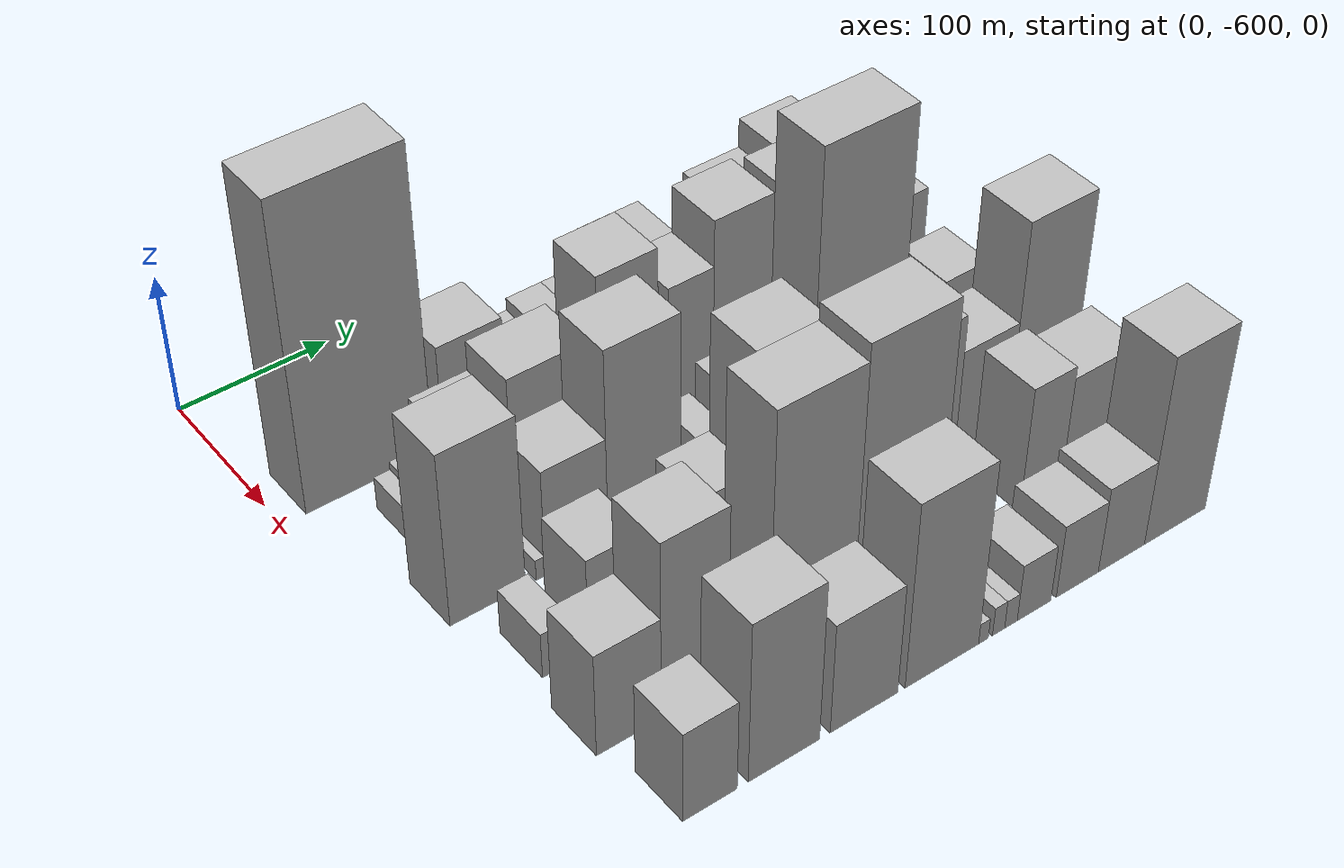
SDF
<sdf version="1.6">
 <world name="default">
  <model name="building_10">
   <static>1</static>
   <pose>100.0000 -542.4456 0 0.000000 0.000000 0.000000</pose>
   <link name="link">
    <pose>0 0 111.00 0 0 0</pose>
    <collision name="collision"><geometry><box><size>40.0000 84.9326 222.0000</size></box></geometry></collision>
    <visual name="visual">
     <cast_shadows>0</cast_shadows>
     <geometry><box><size>40.0000 84.9326 222.0000</size></box></geometry>
     <material>
      <script>
       <uri>model://HANNAS_wall/materials/scripts</uri>
       <uri>model://HANNAS_wall/materials/textures</uri>
       <name>vrc/HANNAS_wall</name>
      </script>
     </material>
    </visual>
   </link>
  </model>
  <model name="building_11">
   <static>1</static>
   <pose>100.0000 -470.8424 0 0.000000 0.000000 0.000000</pose>
   <link name="link">
    <pose>0 0 37.50 0 0 0</pose>
    <collision name="collision"><geometry><box><size>40.0000 44.2738 75.0000</size></box></geometry></collision>
    <visual name="visual">
     <cast_shadows>0</cast_shadows>
     <geometry><box><size>40.0000 44.2738 75.0000</size></box></geometry>
     <material>
      <script>
       <uri>model://HANNAS_wall/materials/scripts</uri>
       <uri>model://HANNAS_wall/materials/textures</uri>
       <name>vrc/HANNAS_wall</name>
      </script>
     </material>
    </visual>
   </link>
  </model>
  <model name="building_12">
   <static>1</static>
   <pose>100.0000 -430.4448 0 0.000000 0.000000 0.000000</pose>
   <link name="link">
    <pose>0 0 19.50 0 0 0</pose>
    <collision name="collision"><geometry><box><size>40.0000 20.5215 39.0000</size></box></geometry></collision>
    <visual name="visual">
     <cast_shadows>0</cast_shadows>
     <geometry><box><size>40.0000 20.5215 39.0000</size></box></geometry>
     <material>
      <script>
       <uri>model://HANNAS_wall/materials/scripts</uri>
       <uri>model://HANNAS_wall/materials/textures</uri>
       <name>vrc/HANNAS_wall</name>
      </script>
     </material>
    </visual>
   </link>
  </model>
  <model name="building_13">
   <static>1</static>
   <pose>100.0000 -407.6726 0 0.000000 0.000000 0.000000</pose>
   <link name="link">
    <pose>0 0 24.00 0 0 0</pose>
    <collision name="collision"><geometry><box><size>40.0000 25.0229 48.0000</size></box></geometry></collision>
    <visual name="visual">
     <cast_shadows>0</cast_shadows>
     <geometry><box><size>40.0000 25.0229 48.0000</size></box></geometry>
     <material>
      <script>
       <uri>model://HANNAS_wall/materials/scripts</uri>
       <uri>model://HANNAS_wall/materials/textures</uri>
       <name>vrc/HANNAS_wall</name>
      </script>
     </material>
    </visual>
   </link>
  </model>
  <model name="building_14">
   <static>1</static>
   <pose>100.0000 -381.9116 0 0.000000 0.000000 0.000000</pose>
   <link name="link">
    <pose>0 0 24.00 0 0 0</pose>
    <collision name="collision"><geometry><box><size>40.0000 26.4992 48.0000</size></box></geometry></collision>
    <visual name="visual">
     <cast_shadows>0</cast_shadows>
     <geometry><box><size>40.0000 26.4992 48.0000</size></box></geometry>
     <material>
      <script>
       <uri>model://HANNAS_wall/materials/scripts</uri>
       <uri>model://HANNAS_wall/materials/textures</uri>
       <name>vrc/HANNAS_wall</name>
      </script>
     </material>
    </visual>
   </link>
  </model>
  <model name="building_15">
   <static>1</static>
   <pose>100.0000 -346.2069 0 0.000000 0.000000 0.000000</pose>
   <link name="link">
    <pose>0 0 37.50 0 0 0</pose>
    <collision name="collision"><geometry><box><size>40.0000 44.9101 75.0000</size></box></geometry></collision>
    <visual name="visual">
     <cast_shadows>0</cast_shadows>
     <geometry><box><size>40.0000 44.9101 75.0000</size></box></geometry>
     <material>
      <script>
       <uri>model://HANNAS_wall/materials/scripts</uri>
       <uri>model://HANNAS_wall/materials/textures</uri>
       <name>vrc/HANNAS_wall</name>
      </script>
     </material>
    </visual>
   </link>
  </model>
  <model name="building_16">
   <static>1</static>
   <pose>100.0000 -314.9539 0 0.000000 0.000000 0.000000</pose>
   <link name="link">
    <pose>0 0 10.50 0 0 0</pose>
    <collision name="collision"><geometry><box><size>40.0000 9.5960 21.0000</size></box></geometry></collision>
    <visual name="visual">
     <cast_shadows>0</cast_shadows>
     <geometry><box><size>40.0000 9.5960 21.0000</size></box></geometry>
     <material>
      <script>
       <uri>model://HANNAS_wall/materials/scripts</uri>
       <uri>model://HANNAS_wall/materials/textures</uri>
       <name>vrc/HANNAS_wall</name>
      </script>
     </material>
    </visual>
   </link>
  </model>
  <model name="building_17">
   <static>1</static>
   <pose>100.0000 -303.6163 0 0.000000 0.000000 0.000000</pose>
   <link name="link">
    <pose>0 0 13.50 0 0 0</pose>
    <collision name="collision"><geometry><box><size>40.0000 13.0792 27.0000</size></box></geometry></collision>
    <visual name="visual">
     <cast_shadows>0</cast_shadows>
     <geometry><box><size>40.0000 13.0792 27.0000</size></box></geometry>
     <material>
      <script>
       <uri>model://HANNAS_wall/materials/scripts</uri>
       <uri>model://HANNAS_wall/materials/textures</uri>
       <name>vrc/HANNAS_wall</name>
      </script>
     </material>
    </visual>
   </link>
  </model>
  <model name="building_18">
   <static>1</static>
   <pose>100.0000 -293.6193 0 0.000000 0.000000 0.000000</pose>
   <link name="link">
    <pose>0 0 7.50 0 0 0</pose>
    <collision name="collision"><geometry><box><size>40.0000 6.9149 15.0000</size></box></geometry></collision>
    <visual name="visual">
     <cast_shadows>0</cast_shadows>
     <geometry><box><size>40.0000 6.9149 15.0000</size></box></geometry>
     <material>
      <script>
       <uri>model://HANNAS_wall/materials/scripts</uri>
       <uri>model://HANNAS_wall/materials/textures</uri>
       <name>vrc/HANNAS_wall</name>
      </script>
     </material>
    </visual>
   </link>
  </model>
  <model name="building_19">
   <static>1</static>
   <pose>100.0000 -268.9465 0 0.000000 0.000000 0.000000</pose>
   <link name="link">
    <pose>0 0 40.50 0 0 0</pose>
    <collision name="collision"><geometry><box><size>40.0000 42.4308 81.0000</size></box></geometry></collision>
    <visual name="visual">
     <cast_shadows>0</cast_shadows>
     <geometry><box><size>40.0000 42.4308 81.0000</size></box></geometry>
     <material>
      <script>
       <uri>model://HANNAS_wall/materials/scripts</uri>
       <uri>model://HANNAS_wall/materials/textures</uri>
       <name>vrc/HANNAS_wall</name>
      </script>
     </material>
    </visual>
   </link>
  </model>
  <model name="building_20">
   <static>1</static>
   <pose>100.0000 -227.5812 0 0.000000 0.000000 0.000000</pose>
   <link name="link">
    <pose>0 0 51.00 0 0 0</pose>
    <collision name="collision"><geometry><box><size>40.0000 40.2998 102.0000</size></box></geometry></collision>
    <visual name="visual">
     <cast_shadows>0</cast_shadows>
     <geometry><box><size>40.0000 40.2998 102.0000</size></box></geometry>
     <material>
      <script>
       <uri>model://HANNAS_wall/materials/scripts</uri>
       <uri>model://HANNAS_wall/materials/textures</uri>
       <name>vrc/HANNAS_wall</name>
      </script>
     </material>
    </visual>
   </link>
  </model>
  <model name="building_21">
   <static>1</static>
   <pose>100.0000 -189.7104 0 0.000000 0.000000 0.000000</pose>
   <link name="link">
    <pose>0 0 34.50 0 0 0</pose>
    <collision name="collision"><geometry><box><size>40.0000 35.4419 69.0000</size></box></geometry></collision>
    <visual name="visual">
     <cast_shadows>0</cast_shadows>
     <geometry><box><size>40.0000 35.4419 69.0000</size></box></geometry>
     <material>
      <script>
       <uri>model://HANNAS_wall/materials/scripts</uri>
       <uri>model://HANNAS_wall/materials/textures</uri>
       <name>vrc/HANNAS_wall</name>
      </script>
     </material>
    </visual>
   </link>
  </model>
  <model name="building_67">
   <static>1</static>
   <pose>160.0000 -545.2296 0 0.000000 0.000000 0.000000</pose>
   <link name="link">
    <pose>0 0 12.00 0 0 0</pose>
    <collision name="collision"><geometry><box><size>40.0000 10.5852 24.0000</size></box></geometry></collision>
    <visual name="visual">
     <cast_shadows>0</cast_shadows>
     <geometry><box><size>40.0000 10.5852 24.0000</size></box></geometry>
     <material>
      <script>
       <uri>model://HANNAS_wall/materials/scripts</uri>
       <uri>model://HANNAS_wall/materials/textures</uri>
       <name>vrc/HANNAS_wall</name>
      </script>
     </material>
    </visual>
   </link>
  </model>
  <model name="building_68">
   <static>1</static>
   <pose>160.0000 -531.9764 0 0.000000 0.000000 0.000000</pose>
   <link name="link">
    <pose>0 0 15.00 0 0 0</pose>
    <collision name="collision"><geometry><box><size>40.0000 15.9211 30.0000</size></box></geometry></collision>
    <visual name="visual">
     <cast_shadows>0</cast_shadows>
     <geometry><box><size>40.0000 15.9211 30.0000</size></box></geometry>
     <material>
      <script>
       <uri>model://HANNAS_wall/materials/scripts</uri>
       <uri>model://HANNAS_wall/materials/textures</uri>
       <name>vrc/HANNAS_wall</name>
      </script>
     </material>
    </visual>
   </link>
  </model>
  <model name="building_69">
   <static>1</static>
   <pose>160.0000 -504.6175 0 0.000000 0.000000 0.000000</pose>
   <link name="link">
    <pose>0 0 34.50 0 0 0</pose>
    <collision name="collision"><geometry><box><size>40.0000 38.7967 69.0000</size></box></geometry></collision>
    <visual name="visual">
     <cast_shadows>0</cast_shadows>
     <geometry><box><size>40.0000 38.7967 69.0000</size></box></geometry>
     <material>
      <script>
       <uri>model://HANNAS_wall/materials/scripts</uri>
       <uri>model://HANNAS_wall/materials/textures</uri>
       <name>vrc/HANNAS_wall</name>
      </script>
     </material>
    </visual>
   </link>
  </model>
  <model name="building_70">
   <static>1</static>
   <pose>160.0000 -458.4277 0 0.000000 0.000000 0.000000</pose>
   <link name="link">
    <pose>0 0 45.00 0 0 0</pose>
    <collision name="collision"><geometry><box><size>40.0000 53.5829 90.0000</size></box></geometry></collision>
    <visual name="visual">
     <cast_shadows>0</cast_shadows>
     <geometry><box><size>40.0000 53.5829 90.0000</size></box></geometry>
     <material>
      <script>
       <uri>model://HANNAS_wall/materials/scripts</uri>
       <uri>model://HANNAS_wall/materials/textures</uri>
       <name>vrc/HANNAS_wall</name>
      </script>
     </material>
    </visual>
   </link>
  </model>
  <model name="building_71">
   <static>1</static>
   <pose>160.0000 -428.1743 0 0.000000 0.000000 0.000000</pose>
   <link name="link">
    <pose>0 0 7.50 0 0 0</pose>
    <collision name="collision"><geometry><box><size>40.0000 6.9239 15.0000</size></box></geometry></collision>
    <visual name="visual">
     <cast_shadows>0</cast_shadows>
     <geometry><box><size>40.0000 6.9239 15.0000</size></box></geometry>
     <material>
      <script>
       <uri>model://HANNAS_wall/materials/scripts</uri>
       <uri>model://HANNAS_wall/materials/textures</uri>
       <name>vrc/HANNAS_wall</name>
      </script>
     </material>
    </visual>
   </link>
  </model>
  <model name="building_72">
   <static>1</static>
   <pose>160.0000 -403.7115 0 0.000000 0.000000 0.000000</pose>
   <link name="link">
    <pose>0 0 66.00 0 0 0</pose>
    <collision name="collision"><geometry><box><size>40.0000 42.0019 132.0000</size></box></geometry></collision>
    <visual name="visual">
     <cast_shadows>0</cast_shadows>
     <geometry><box><size>40.0000 42.0019 132.0000</size></box></geometry>
     <material>
      <script>
       <uri>model://HANNAS_wall/materials/scripts</uri>
       <uri>model://HANNAS_wall/materials/textures</uri>
       <name>vrc/HANNAS_wall</name>
      </script>
     </material>
    </visual>
   </link>
  </model>
  <model name="building_73">
   <static>1</static>
   <pose>160.0000 -359.5180 0 0.000000 0.000000 0.000000</pose>
   <link name="link">
    <pose>0 0 49.50 0 0 0</pose>
    <collision name="collision"><geometry><box><size>40.0000 32.3851 99.0000</size></box></geometry></collision>
    <visual name="visual">
     <cast_shadows>0</cast_shadows>
     <geometry><box><size>40.0000 32.3851 99.0000</size></box></geometry>
     <material>
      <script>
       <uri>model://HANNAS_wall/materials/scripts</uri>
       <uri>model://HANNAS_wall/materials/textures</uri>
       <name>vrc/HANNAS_wall</name>
      </script>
     </material>
    </visual>
   </link>
  </model>
  <model name="building_74">
   <static>1</static>
   <pose>160.0000 -322.0054 0 0.000000 0.000000 0.000000</pose>
   <link name="link">
    <pose>0 0 66.00 0 0 0</pose>
    <collision name="collision"><geometry><box><size>40.0000 42.6402 132.0000</size></box></geometry></collision>
    <visual name="visual">
     <cast_shadows>0</cast_shadows>
     <geometry><box><size>40.0000 42.6402 132.0000</size></box></geometry>
     <material>
      <script>
       <uri>model://HANNAS_wall/materials/scripts</uri>
       <uri>model://HANNAS_wall/materials/textures</uri>
       <name>vrc/HANNAS_wall</name>
      </script>
     </material>
    </visual>
   </link>
  </model>
  <model name="building_75">
   <static>1</static>
   <pose>160.0000 -296.1301 0 0.000000 0.000000 0.000000</pose>
   <link name="link">
    <pose>0 0 10.50 0 0 0</pose>
    <collision name="collision"><geometry><box><size>40.0000 9.1105 21.0000</size></box></geometry></collision>
    <visual name="visual">
     <cast_shadows>0</cast_shadows>
     <geometry><box><size>40.0000 9.1105 21.0000</size></box></geometry>
     <material>
      <script>
       <uri>model://HANNAS_wall/materials/scripts</uri>
       <uri>model://HANNAS_wall/materials/textures</uri>
       <name>vrc/HANNAS_wall</name>
      </script>
     </material>
    </visual>
   </link>
  </model>
  <model name="building_76">
   <static>1</static>
   <pose>160.0000 -271.3415 0 0.000000 0.000000 0.000000</pose>
   <link name="link">
    <pose>0 0 64.50 0 0 0</pose>
    <collision name="collision"><geometry><box><size>40.0000 40.4667 129.0000</size></box></geometry></collision>
    <visual name="visual">
     <cast_shadows>0</cast_shadows>
     <geometry><box><size>40.0000 40.4667 129.0000</size></box></geometry>
     <material>
      <script>
       <uri>model://HANNAS_wall/materials/scripts</uri>
       <uri>model://HANNAS_wall/materials/textures</uri>
       <name>vrc/HANNAS_wall</name>
      </script>
     </material>
    </visual>
   </link>
  </model>
  <model name="building_77">
   <static>1</static>
   <pose>160.0000 -239.2705 0 0.000000 0.000000 0.000000</pose>
   <link name="link">
    <pose>0 0 16.50 0 0 0</pose>
    <collision name="collision"><geometry><box><size>40.0000 17.6752 33.0000</size></box></geometry></collision>
    <visual name="visual">
     <cast_shadows>0</cast_shadows>
     <geometry><box><size>40.0000 17.6752 33.0000</size></box></geometry>
     <material>
      <script>
       <uri>model://HANNAS_wall/materials/scripts</uri>
       <uri>model://HANNAS_wall/materials/textures</uri>
       <name>vrc/HANNAS_wall</name>
      </script>
     </material>
    </visual>
   </link>
  </model>
  <model name="building_78">
   <static>1</static>
   <pose>160.0000 -206.2188 0 0.000000 0.000000 0.000000</pose>
   <link name="link">
    <pose>0 0 40.50 0 0 0</pose>
    <collision name="collision"><geometry><box><size>40.0000 48.4283 81.0000</size></box></geometry></collision>
    <visual name="visual">
     <cast_shadows>0</cast_shadows>
     <geometry><box><size>40.0000 48.4283 81.0000</size></box></geometry>
     <material>
      <script>
       <uri>model://HANNAS_wall/materials/scripts</uri>
       <uri>model://HANNAS_wall/materials/textures</uri>
       <name>vrc/HANNAS_wall</name>
      </script>
     </material>
    </visual>
   </link>
  </model>
  <model name="building_119">
   <static>1</static>
   <pose>220.0000 -542.3114 0 0.000000 0.000000 0.000000</pose>
   <link name="link">
    <pose>0 0 63.00 0 0 0</pose>
    <collision name="collision"><geometry><box><size>40.0000 49.0394 126.0000</size></box></geometry></collision>
    <visual name="visual">
     <cast_shadows>0</cast_shadows>
     <geometry><box><size>40.0000 49.0394 126.0000</size></box></geometry>
     <material>
      <script>
       <uri>model://HANNAS_wall/materials/scripts</uri>
       <uri>model://HANNAS_wall/materials/textures</uri>
       <name>vrc/HANNAS_wall</name>
      </script>
     </material>
    </visual>
   </link>
  </model>
  <model name="building_120">
   <static>1</static>
   <pose>220.0000 -507.7139 0 0.000000 0.000000 0.000000</pose>
   <link name="link">
    <pose>0 0 7.50 0 0 0</pose>
    <collision name="collision"><geometry><box><size>40.0000 6.1556 15.0000</size></box></geometry></collision>
    <visual name="visual">
     <cast_shadows>0</cast_shadows>
     <geometry><box><size>40.0000 6.1556 15.0000</size></box></geometry>
     <material>
      <script>
       <uri>model://HANNAS_wall/materials/scripts</uri>
       <uri>model://HANNAS_wall/materials/textures</uri>
       <name>vrc/HANNAS_wall</name>
      </script>
     </material>
    </visual>
   </link>
  </model>
  <model name="building_121">
   <static>1</static>
   <pose>220.0000 -483.4582 0 0.000000 0.000000 0.000000</pose>
   <link name="link">
    <pose>0 0 39.00 0 0 0</pose>
    <collision name="collision"><geometry><box><size>40.0000 42.3560 78.0000</size></box></geometry></collision>
    <visual name="visual">
     <cast_shadows>0</cast_shadows>
     <geometry><box><size>40.0000 42.3560 78.0000</size></box></geometry>
     <material>
      <script>
       <uri>model://HANNAS_wall/materials/scripts</uri>
       <uri>model://HANNAS_wall/materials/textures</uri>
       <name>vrc/HANNAS_wall</name>
      </script>
     </material>
    </visual>
   </link>
  </model>
  <model name="building_122">
   <static>1</static>
   <pose>220.0000 -436.9860 0 0.000000 0.000000 0.000000</pose>
   <link name="link">
    <pose>0 0 70.50 0 0 0</pose>
    <collision name="collision"><geometry><box><size>40.0000 50.5884 141.0000</size></box></geometry></collision>
    <visual name="visual">
     <cast_shadows>0</cast_shadows>
     <geometry><box><size>40.0000 50.5884 141.0000</size></box></geometry>
     <material>
      <script>
       <uri>model://HANNAS_wall/materials/scripts</uri>
       <uri>model://HANNAS_wall/materials/textures</uri>
       <name>vrc/HANNAS_wall</name>
      </script>
     </material>
    </visual>
   </link>
  </model>
  <model name="building_123">
   <static>1</static>
   <pose>220.0000 -407.6891 0 0.000000 0.000000 0.000000</pose>
   <link name="link">
    <pose>0 0 9.00 0 0 0</pose>
    <collision name="collision"><geometry><box><size>40.0000 8.0053 18.0000</size></box></geometry></collision>
    <visual name="visual">
     <cast_shadows>0</cast_shadows>
     <geometry><box><size>40.0000 8.0053 18.0000</size></box></geometry>
     <material>
      <script>
       <uri>model://HANNAS_wall/materials/scripts</uri>
       <uri>model://HANNAS_wall/materials/textures</uri>
       <name>vrc/HANNAS_wall</name>
      </script>
     </material>
    </visual>
   </link>
  </model>
  <model name="building_124">
   <static>1</static>
   <pose>220.0000 -399.7701 0 0.000000 0.000000 0.000000</pose>
   <link name="link">
    <pose>0 0 9.00 0 0 0</pose>
    <collision name="collision"><geometry><box><size>40.0000 7.8327 18.0000</size></box></geometry></collision>
    <visual name="visual">
     <cast_shadows>0</cast_shadows>
     <geometry><box><size>40.0000 7.8327 18.0000</size></box></geometry>
     <material>
      <script>
       <uri>model://HANNAS_wall/materials/scripts</uri>
       <uri>model://HANNAS_wall/materials/textures</uri>
       <name>vrc/HANNAS_wall</name>
      </script>
     </material>
    </visual>
   </link>
  </model>
  <model name="building_125">
   <static>1</static>
   <pose>220.0000 -385.8288 0 0.000000 0.000000 0.000000</pose>
   <link name="link">
    <pose>0 0 18.00 0 0 0</pose>
    <collision name="collision"><geometry><box><size>40.0000 20.0500 36.0000</size></box></geometry></collision>
    <visual name="visual">
     <cast_shadows>0</cast_shadows>
     <geometry><box><size>40.0000 20.0500 36.0000</size></box></geometry>
     <material>
      <script>
       <uri>model://HANNAS_wall/materials/scripts</uri>
       <uri>model://HANNAS_wall/materials/textures</uri>
       <name>vrc/HANNAS_wall</name>
      </script>
     </material>
    </visual>
   </link>
  </model>
  <model name="building_126">
   <static>1</static>
   <pose>220.0000 -355.9736 0 0.000000 0.000000 0.000000</pose>
   <link name="link">
    <pose>0 0 28.50 0 0 0</pose>
    <collision name="collision"><geometry><box><size>40.0000 31.6604 57.0000</size></box></geometry></collision>
    <visual name="visual">
     <cast_shadows>0</cast_shadows>
     <geometry><box><size>40.0000 31.6604 57.0000</size></box></geometry>
     <material>
      <script>
       <uri>model://HANNAS_wall/materials/scripts</uri>
       <uri>model://HANNAS_wall/materials/textures</uri>
       <name>vrc/HANNAS_wall</name>
      </script>
     </material>
    </visual>
   </link>
  </model>
  <model name="building_127">
   <static>1</static>
   <pose>220.0000 -328.7168 0 0.000000 0.000000 0.000000</pose>
   <link name="link">
    <pose>0 0 22.50 0 0 0</pose>
    <collision name="collision"><geometry><box><size>40.0000 22.8532 45.0000</size></box></geometry></collision>
    <visual name="visual">
     <cast_shadows>0</cast_shadows>
     <geometry><box><size>40.0000 22.8532 45.0000</size></box></geometry>
     <material>
      <script>
       <uri>model://HANNAS_wall/materials/scripts</uri>
       <uri>model://HANNAS_wall/materials/textures</uri>
       <name>vrc/HANNAS_wall</name>
      </script>
     </material>
    </visual>
   </link>
  </model>
  <model name="building_128">
   <static>1</static>
   <pose>220.0000 -284.1158 0 0.000000 0.000000 0.000000</pose>
   <link name="link">
    <pose>0 0 103.50 0 0 0</pose>
    <collision name="collision"><geometry><box><size>40.0000 66.3488 207.0000</size></box></geometry></collision>
    <visual name="visual">
     <cast_shadows>0</cast_shadows>
     <geometry><box><size>40.0000 66.3488 207.0000</size></box></geometry>
     <material>
      <script>
       <uri>model://HANNAS_wall/materials/scripts</uri>
       <uri>model://HANNAS_wall/materials/textures</uri>
       <name>vrc/HANNAS_wall</name>
      </script>
     </material>
    </visual>
   </link>
  </model>
  <model name="building_129">
   <static>1</static>
   <pose>220.0000 -236.6426 0 0.000000 0.000000 0.000000</pose>
   <link name="link">
    <pose>0 0 18.00 0 0 0</pose>
    <collision name="collision"><geometry><box><size>40.0000 20.5976 36.0000</size></box></geometry></collision>
    <visual name="visual">
     <cast_shadows>0</cast_shadows>
     <geometry><box><size>40.0000 20.5976 36.0000</size></box></geometry>
     <material>
      <script>
       <uri>model://HANNAS_wall/materials/scripts</uri>
       <uri>model://HANNAS_wall/materials/textures</uri>
       <name>vrc/HANNAS_wall</name>
      </script>
     </material>
    </visual>
   </link>
  </model>
  <model name="building_130">
   <static>1</static>
   <pose>220.0000 -202.5757 0 0.000000 0.000000 0.000000</pose>
   <link name="link">
    <pose>0 0 33.00 0 0 0</pose>
    <collision name="collision"><geometry><box><size>40.0000 33.5363 66.0000</size></box></geometry></collision>
    <visual name="visual">
     <cast_shadows>0</cast_shadows>
     <geometry><box><size>40.0000 33.5363 66.0000</size></box></geometry>
     <material>
      <script>
       <uri>model://HANNAS_wall/materials/scripts</uri>
       <uri>model://HANNAS_wall/materials/textures</uri>
       <name>vrc/HANNAS_wall</name>
      </script>
     </material>
    </visual>
   </link>
  </model>
  <model name="building_173">
   <static>1</static>
   <pose>280.0000 -538.1453 0 0.000000 0.000000 0.000000</pose>
   <link name="link">
    <pose>0 0 16.50 0 0 0</pose>
    <collision name="collision"><geometry><box><size>40.0000 19.7523 33.0000</size></box></geometry></collision>
    <visual name="visual">
     <cast_shadows>0</cast_shadows>
     <geometry><box><size>40.0000 19.7523 33.0000</size></box></geometry>
     <material>
      <script>
       <uri>model://HANNAS_wall/materials/scripts</uri>
       <uri>model://HANNAS_wall/materials/textures</uri>
       <name>vrc/HANNAS_wall</name>
      </script>
     </material>
    </visual>
   </link>
  </model>
  <model name="building_174">
   <static>1</static>
   <pose>280.0000 -499.9161 0 0.000000 0.000000 0.000000</pose>
   <link name="link">
    <pose>0 0 34.50 0 0 0</pose>
    <collision name="collision"><geometry><box><size>40.0000 36.7062 69.0000</size></box></geometry></collision>
    <visual name="visual">
     <cast_shadows>0</cast_shadows>
     <geometry><box><size>40.0000 36.7062 69.0000</size></box></geometry>
     <material>
      <script>
       <uri>model://HANNAS_wall/materials/scripts</uri>
       <uri>model://HANNAS_wall/materials/textures</uri>
       <name>vrc/HANNAS_wall</name>
      </script>
     </material>
    </visual>
   </link>
  </model>
  <model name="building_175">
   <static>1</static>
   <pose>280.0000 -470.8965 0 0.000000 0.000000 0.000000</pose>
   <link name="link">
    <pose>0 0 12.00 0 0 0</pose>
    <collision name="collision"><geometry><box><size>40.0000 11.3329 24.0000</size></box></geometry></collision>
    <visual name="visual">
     <cast_shadows>0</cast_shadows>
     <geometry><box><size>40.0000 11.3329 24.0000</size></box></geometry>
     <material>
      <script>
       <uri>model://HANNAS_wall/materials/scripts</uri>
       <uri>model://HANNAS_wall/materials/textures</uri>
       <name>vrc/HANNAS_wall</name>
      </script>
     </material>
    </visual>
   </link>
  </model>
  <model name="building_176">
   <static>1</static>
   <pose>280.0000 -456.6479 0 0.000000 0.000000 0.000000</pose>
   <link name="link">
    <pose>0 0 10.50 0 0 0</pose>
    <collision name="collision"><geometry><box><size>40.0000 9.1643 21.0000</size></box></geometry></collision>
    <visual name="visual">
     <cast_shadows>0</cast_shadows>
     <geometry><box><size>40.0000 9.1643 21.0000</size></box></geometry>
     <material>
      <script>
       <uri>model://HANNAS_wall/materials/scripts</uri>
       <uri>model://HANNAS_wall/materials/textures</uri>
       <name>vrc/HANNAS_wall</name>
      </script>
     </material>
    </visual>
   </link>
  </model>
  <model name="building_177">
   <static>1</static>
   <pose>280.0000 -425.9094 0 0.000000 0.000000 0.000000</pose>
   <link name="link">
    <pose>0 0 34.50 0 0 0</pose>
    <collision name="collision"><geometry><box><size>40.0000 36.3127 69.0000</size></box></geometry></collision>
    <visual name="visual">
     <cast_shadows>0</cast_shadows>
     <geometry><box><size>40.0000 36.3127 69.0000</size></box></geometry>
     <material>
      <script>
       <uri>model://HANNAS_wall/materials/scripts</uri>
       <uri>model://HANNAS_wall/materials/textures</uri>
       <name>vrc/HANNAS_wall</name>
      </script>
     </material>
    </visual>
   </link>
  </model>
  <model name="building_178">
   <static>1</static>
   <pose>280.0000 -384.1992 0 0.000000 0.000000 0.000000</pose>
   <link name="link">
    <pose>0 0 76.50 0 0 0</pose>
    <collision name="collision"><geometry><box><size>40.0000 47.1078 153.0000</size></box></geometry></collision>
    <visual name="visual">
     <cast_shadows>0</cast_shadows>
     <geometry><box><size>40.0000 47.1078 153.0000</size></box></geometry>
     <material>
      <script>
       <uri>model://HANNAS_wall/materials/scripts</uri>
       <uri>model://HANNAS_wall/materials/textures</uri>
       <name>vrc/HANNAS_wall</name>
      </script>
     </material>
    </visual>
   </link>
  </model>
  <model name="building_179">
   <static>1</static>
   <pose>280.0000 -346.9964 0 0.000000 0.000000 0.000000</pose>
   <link name="link">
    <pose>0 0 12.00 0 0 0</pose>
    <collision name="collision"><geometry><box><size>40.0000 11.2979 24.0000</size></box></geometry></collision>
    <visual name="visual">
     <cast_shadows>0</cast_shadows>
     <geometry><box><size>40.0000 11.2979 24.0000</size></box></geometry>
     <material>
      <script>
       <uri>model://HANNAS_wall/materials/scripts</uri>
       <uri>model://HANNAS_wall/materials/textures</uri>
       <name>vrc/HANNAS_wall</name>
      </script>
     </material>
    </visual>
   </link>
  </model>
  <model name="building_180">
   <static>1</static>
   <pose>280.0000 -331.8905 0 0.000000 0.000000 0.000000</pose>
   <link name="link">
    <pose>0 0 16.50 0 0 0</pose>
    <collision name="collision"><geometry><box><size>40.0000 18.9137 33.0000</size></box></geometry></collision>
    <visual name="visual">
     <cast_shadows>0</cast_shadows>
     <geometry><box><size>40.0000 18.9137 33.0000</size></box></geometry>
     <material>
      <script>
       <uri>model://HANNAS_wall/materials/scripts</uri>
       <uri>model://HANNAS_wall/materials/textures</uri>
       <name>vrc/HANNAS_wall</name>
      </script>
     </material>
    </visual>
   </link>
  </model>
  <model name="building_181">
   <static>1</static>
   <pose>280.0000 -309.9900 0 0.000000 0.000000 0.000000</pose>
   <link name="link">
    <pose>0 0 24.00 0 0 0</pose>
    <collision name="collision"><geometry><box><size>40.0000 24.8874 48.0000</size></box></geometry></collision>
    <visual name="visual">
     <cast_shadows>0</cast_shadows>
     <geometry><box><size>40.0000 24.8874 48.0000</size></box></geometry>
     <material>
      <script>
       <uri>model://HANNAS_wall/materials/scripts</uri>
       <uri>model://HANNAS_wall/materials/textures</uri>
       <name>vrc/HANNAS_wall</name>
      </script>
     </material>
    </visual>
   </link>
  </model>
  <model name="building_182">
   <static>1</static>
   <pose>280.0000 -278.5786 0 0.000000 0.000000 0.000000</pose>
   <link name="link">
    <pose>0 0 51.00 0 0 0</pose>
    <collision name="collision"><geometry><box><size>40.0000 37.9353 102.0000</size></box></geometry></collision>
    <visual name="visual">
     <cast_shadows>0</cast_shadows>
     <geometry><box><size>40.0000 37.9353 102.0000</size></box></geometry>
     <material>
      <script>
       <uri>model://HANNAS_wall/materials/scripts</uri>
       <uri>model://HANNAS_wall/materials/textures</uri>
       <name>vrc/HANNAS_wall</name>
      </script>
     </material>
    </visual>
   </link>
  </model>
  <model name="building_183">
   <static>1</static>
   <pose>280.0000 -238.7298 0 0.000000 0.000000 0.000000</pose>
   <link name="link">
    <pose>0 0 37.50 0 0 0</pose>
    <collision name="collision"><geometry><box><size>40.0000 41.7623 75.0000</size></box></geometry></collision>
    <visual name="visual">
     <cast_shadows>0</cast_shadows>
     <geometry><box><size>40.0000 41.7623 75.0000</size></box></geometry>
     <material>
      <script>
       <uri>model://HANNAS_wall/materials/scripts</uri>
       <uri>model://HANNAS_wall/materials/textures</uri>
       <name>vrc/HANNAS_wall</name>
      </script>
     </material>
    </visual>
   </link>
  </model>
  <model name="building_184">
   <static>1</static>
   <pose>280.0000 -192.5985 0 0.000000 0.000000 0.000000</pose>
   <link name="link">
    <pose>0 0 73.50 0 0 0</pose>
    <collision name="collision"><geometry><box><size>40.0000 50.5004 147.0000</size></box></geometry></collision>
    <visual name="visual">
     <cast_shadows>0</cast_shadows>
     <geometry><box><size>40.0000 50.5004 147.0000</size></box></geometry>
     <material>
      <script>
       <uri>model://HANNAS_wall/materials/scripts</uri>
       <uri>model://HANNAS_wall/materials/textures</uri>
       <name>vrc/HANNAS_wall</name>
      </script>
     </material>
    </visual>
   </link>
  </model>
  <model name="building_231">
   <static>1</static>
   <pose>340.0000 -535.4428 0 0.000000 0.000000 0.000000</pose>
   <link name="link">
    <pose>0 0 37.50 0 0 0</pose>
    <collision name="collision"><geometry><box><size>40.0000 41.3016 75.0000</size></box></geometry></collision>
    <visual name="visual">
     <cast_shadows>0</cast_shadows>
     <geometry><box><size>40.0000 41.3016 75.0000</size></box></geometry>
     <material>
      <script>
       <uri>model://HANNAS_wall/materials/scripts</uri>
       <uri>model://HANNAS_wall/materials/textures</uri>
       <name>vrc/HANNAS_wall</name>
      </script>
     </material>
    </visual>
   </link>
  </model>
  <model name="building_232">
   <static>1</static>
   <pose>340.0000 -493.1176 0 0.000000 0.000000 0.000000</pose>
   <link name="link">
    <pose>0 0 64.50 0 0 0</pose>
    <collision name="collision"><geometry><box><size>40.0000 43.3488 129.0000</size></box></geometry></collision>
    <visual name="visual">
     <cast_shadows>0</cast_shadows>
     <geometry><box><size>40.0000 43.3488 129.0000</size></box></geometry>
     <material>
      <script>
       <uri>model://HANNAS_wall/materials/scripts</uri>
       <uri>model://HANNAS_wall/materials/textures</uri>
       <name>vrc/HANNAS_wall</name>
      </script>
     </material>
    </visual>
   </link>
  </model>
  <model name="building_233">
   <static>1</static>
   <pose>340.0000 -455.6373 0 0.000000 0.000000 0.000000</pose>
   <link name="link">
    <pose>0 0 22.50 0 0 0</pose>
    <collision name="collision"><geometry><box><size>40.0000 23.6118 45.0000</size></box></geometry></collision>
    <visual name="visual">
     <cast_shadows>0</cast_shadows>
     <geometry><box><size>40.0000 23.6118 45.0000</size></box></geometry>
     <material>
      <script>
       <uri>model://HANNAS_wall/materials/scripts</uri>
       <uri>model://HANNAS_wall/materials/textures</uri>
       <name>vrc/HANNAS_wall</name>
      </script>
     </material>
    </visual>
   </link>
  </model>
  <model name="building_234">
   <static>1</static>
   <pose>340.0000 -414.6225 0 0.000000 0.000000 0.000000</pose>
   <link name="link">
    <pose>0 0 88.50 0 0 0</pose>
    <collision name="collision"><geometry><box><size>40.0000 58.4178 177.0000</size></box></geometry></collision>
    <visual name="visual">
     <cast_shadows>0</cast_shadows>
     <geometry><box><size>40.0000 58.4178 177.0000</size></box></geometry>
     <material>
      <script>
       <uri>model://HANNAS_wall/materials/scripts</uri>
       <uri>model://HANNAS_wall/materials/textures</uri>
       <name>vrc/HANNAS_wall</name>
      </script>
     </material>
    </visual>
   </link>
  </model>
  <model name="building_235">
   <static>1</static>
   <pose>340.0000 -355.4143 0 0.000000 0.000000 0.000000</pose>
   <link name="link">
    <pose>0 0 94.50 0 0 0</pose>
    <collision name="collision"><geometry><box><size>40.0000 59.9987 189.0000</size></box></geometry></collision>
    <visual name="visual">
     <cast_shadows>0</cast_shadows>
     <geometry><box><size>40.0000 59.9987 189.0000</size></box></geometry>
     <material>
      <script>
       <uri>model://HANNAS_wall/materials/scripts</uri>
       <uri>model://HANNAS_wall/materials/textures</uri>
       <name>vrc/HANNAS_wall</name>
      </script>
     </material>
    </visual>
   </link>
  </model>
  <model name="building_236">
   <static>1</static>
   <pose>340.0000 -248.7207 0 0.000000 0.000000 0.000000</pose>
   <link name="link">
    <pose>0 0 46.50 0 0 0</pose>
    <collision name="collision"><geometry><box><size>40.0000 31.1295 93.0000</size></box></geometry></collision>
    <visual name="visual">
     <cast_shadows>0</cast_shadows>
     <geometry><box><size>40.0000 31.1295 93.0000</size></box></geometry>
     <material>
      <script>
       <uri>model://HANNAS_wall/materials/scripts</uri>
       <uri>model://HANNAS_wall/materials/textures</uri>
       <name>vrc/HANNAS_wall</name>
      </script>
     </material>
    </visual>
   </link>
  </model>
  <model name="building_237">
   <static>1</static>
   <pose>340.0000 -208.1796 0 0.000000 0.000000 0.000000</pose>
   <link name="link">
    <pose>0 0 42.00 0 0 0</pose>
    <collision name="collision"><geometry><box><size>40.0000 49.9525 84.0000</size></box></geometry></collision>
    <visual name="visual">
     <cast_shadows>0</cast_shadows>
     <geometry><box><size>40.0000 49.9525 84.0000</size></box></geometry>
     <material>
      <script>
       <uri>model://HANNAS_wall/materials/scripts</uri>
       <uri>model://HANNAS_wall/materials/textures</uri>
       <name>vrc/HANNAS_wall</name>
      </script>
     </material>
    </visual>
   </link>
  </model>
  <model name="building_285">
   <static>1</static>
   <pose>400.0000 -529.0227 0 0.000000 0.000000 0.000000</pose>
   <link name="link">
    <pose>0 0 33.00 0 0 0</pose>
    <collision name="collision"><geometry><box><size>40.0000 34.3490 66.0000</size></box></geometry></collision>
    <visual name="visual">
     <cast_shadows>0</cast_shadows>
     <geometry><box><size>40.0000 34.3490 66.0000</size></box></geometry>
     <material>
      <script>
       <uri>model://HANNAS_wall/materials/scripts</uri>
       <uri>model://HANNAS_wall/materials/textures</uri>
       <name>vrc/HANNAS_wall</name>
      </script>
     </material>
    </visual>
   </link>
  </model>
  <model name="building_286">
   <static>1</static>
   <pose>400.0000 -481.5708 0 0.000000 0.000000 0.000000</pose>
   <link name="link">
    <pose>0 0 58.50 0 0 0</pose>
    <collision name="collision"><geometry><box><size>40.0000 46.5549 117.0000</size></box></geometry></collision>
    <visual name="visual">
     <cast_shadows>0</cast_shadows>
     <geometry><box><size>40.0000 46.5549 117.0000</size></box></geometry>
     <material>
      <script>
       <uri>model://HANNAS_wall/materials/scripts</uri>
       <uri>model://HANNAS_wall/materials/textures</uri>
       <name>vrc/HANNAS_wall</name>
      </script>
     </material>
    </visual>
   </link>
  </model>
  <model name="building_287">
   <static>1</static>
   <pose>400.0000 -428.4436 0 0.000000 0.000000 0.000000</pose>
   <link name="link">
    <pose>0 0 40.50 0 0 0</pose>
    <collision name="collision"><geometry><box><size>40.0000 45.6995 81.0000</size></box></geometry></collision>
    <visual name="visual">
     <cast_shadows>0</cast_shadows>
     <geometry><box><size>40.0000 45.6995 81.0000</size></box></geometry>
     <material>
      <script>
       <uri>model://HANNAS_wall/materials/scripts</uri>
       <uri>model://HANNAS_wall/materials/textures</uri>
       <name>vrc/HANNAS_wall</name>
      </script>
     </material>
    </visual>
   </link>
  </model>
  <model name="building_288">
   <static>1</static>
   <pose>400.0000 -374.8408 0 0.000000 0.000000 0.000000</pose>
   <link name="link">
    <pose>0 0 67.50 0 0 0</pose>
    <collision name="collision"><geometry><box><size>40.0000 51.5060 135.0000</size></box></geometry></collision>
    <visual name="visual">
     <cast_shadows>0</cast_shadows>
     <geometry><box><size>40.0000 51.5060 135.0000</size></box></geometry>
     <material>
      <script>
       <uri>model://HANNAS_wall/materials/scripts</uri>
       <uri>model://HANNAS_wall/materials/textures</uri>
       <name>vrc/HANNAS_wall</name>
      </script>
     </material>
    </visual>
   </link>
  </model>
  <model name="building_289">
   <static>1</static>
   <pose>400.0000 -345.6099 0 0.000000 0.000000 0.000000</pose>
   <link name="link">
    <pose>0 0 7.50 0 0 0</pose>
    <collision name="collision"><geometry><box><size>40.0000 6.9559 15.0000</size></box></geometry></collision>
    <visual name="visual">
     <cast_shadows>0</cast_shadows>
     <geometry><box><size>40.0000 6.9559 15.0000</size></box></geometry>
     <material>
      <script>
       <uri>model://HANNAS_wall/materials/scripts</uri>
       <uri>model://HANNAS_wall/materials/textures</uri>
       <name>vrc/HANNAS_wall</name>
      </script>
     </material>
    </visual>
   </link>
  </model>
  <model name="building_290">
   <static>1</static>
   <pose>400.0000 -334.7514 0 0.000000 0.000000 0.000000</pose>
   <link name="link">
    <pose>0 0 10.50 0 0 0</pose>
    <collision name="collision"><geometry><box><size>40.0000 8.7611 21.0000</size></box></geometry></collision>
    <visual name="visual">
     <cast_shadows>0</cast_shadows>
     <geometry><box><size>40.0000 8.7611 21.0000</size></box></geometry>
     <material>
      <script>
       <uri>model://HANNAS_wall/materials/scripts</uri>
       <uri>model://HANNAS_wall/materials/textures</uri>
       <name>vrc/HANNAS_wall</name>
      </script>
     </material>
    </visual>
   </link>
  </model>
  <model name="building_291">
   <static>1</static>
   <pose>400.0000 -325.8312 0 0.000000 0.000000 0.000000</pose>
   <link name="link">
    <pose>0 0 10.50 0 0 0</pose>
    <collision name="collision"><geometry><box><size>40.0000 9.0793 21.0000</size></box></geometry></collision>
    <visual name="visual">
     <cast_shadows>0</cast_shadows>
     <geometry><box><size>40.0000 9.0793 21.0000</size></box></geometry>
     <material>
      <script>
       <uri>model://HANNAS_wall/materials/scripts</uri>
       <uri>model://HANNAS_wall/materials/textures</uri>
       <name>vrc/HANNAS_wall</name>
      </script>
     </material>
    </visual>
   </link>
  </model>
  <model name="building_292">
   <static>1</static>
   <pose>400.0000 -308.9810 0 0.000000 0.000000 0.000000</pose>
   <link name="link">
    <pose>0 0 21.00 0 0 0</pose>
    <collision name="collision"><geometry><box><size>40.0000 24.6211 42.0000</size></box></geometry></collision>
    <visual name="visual">
     <cast_shadows>0</cast_shadows>
     <geometry><box><size>40.0000 24.6211 42.0000</size></box></geometry>
     <material>
      <script>
       <uri>model://HANNAS_wall/materials/scripts</uri>
       <uri>model://HANNAS_wall/materials/textures</uri>
       <name>vrc/HANNAS_wall</name>
      </script>
     </material>
    </visual>
   </link>
  </model>
  <model name="building_293">
   <static>1</static>
   <pose>400.0000 -276.9393 0 0.000000 0.000000 0.000000</pose>
   <link name="link">
    <pose>0 0 27.00 0 0 0</pose>
    <collision name="collision"><geometry><box><size>40.0000 31.4621 54.0000</size></box></geometry></collision>
    <visual name="visual">
     <cast_shadows>0</cast_shadows>
     <geometry><box><size>40.0000 31.4621 54.0000</size></box></geometry>
     <material>
      <script>
       <uri>model://HANNAS_wall/materials/scripts</uri>
       <uri>model://HANNAS_wall/materials/textures</uri>
       <name>vrc/HANNAS_wall</name>
      </script>
     </material>
    </visual>
   </link>
  </model>
  <model name="building_294">
   <static>1</static>
   <pose>400.0000 -243.6271 0 0.000000 0.000000 0.000000</pose>
   <link name="link">
    <pose>0 0 31.50 0 0 0</pose>
    <collision name="collision"><geometry><box><size>40.0000 35.1623 63.0000</size></box></geometry></collision>
    <visual name="visual">
     <cast_shadows>0</cast_shadows>
     <geometry><box><size>40.0000 35.1623 63.0000</size></box></geometry>
     <material>
      <script>
       <uri>model://HANNAS_wall/materials/scripts</uri>
       <uri>model://HANNAS_wall/materials/textures</uri>
       <name>vrc/HANNAS_wall</name>
      </script>
     </material>
    </visual>
   </link>
  </model>
  <model name="building_295">
   <static>1</static>
   <pose>400.0000 -202.2690 0 0.000000 0.000000 0.000000</pose>
   <link name="link">
    <pose>0 0 69.00 0 0 0</pose>
    <collision name="collision"><geometry><box><size>40.0000 47.5539 138.0000</size></box></geometry></collision>
    <visual name="visual">
     <cast_shadows>0</cast_shadows>
     <geometry><box><size>40.0000 47.5539 138.0000</size></box></geometry>
     <material>
      <script>
       <uri>model://HANNAS_wall/materials/scripts</uri>
       <uri>model://HANNAS_wall/materials/textures</uri>
       <name>vrc/HANNAS_wall</name>
      </script>
     </material>
    </visual>
   </link>
  </model>
 </world>
</sdf>
